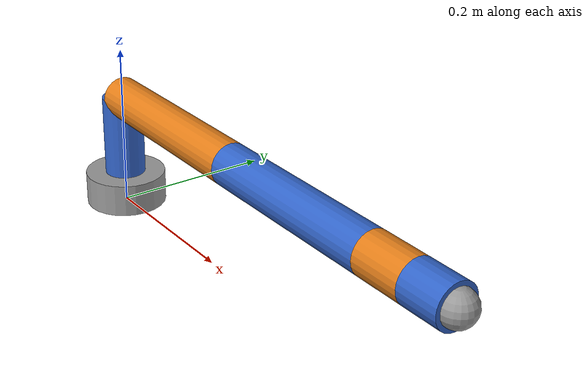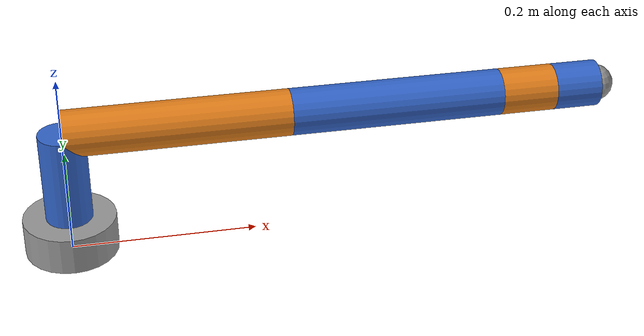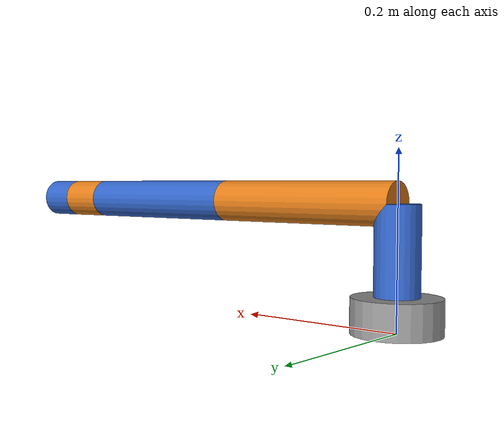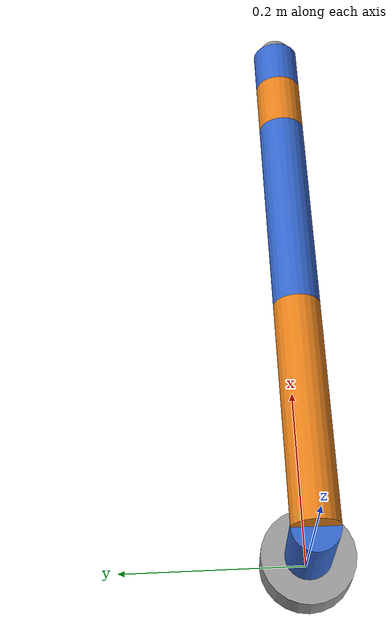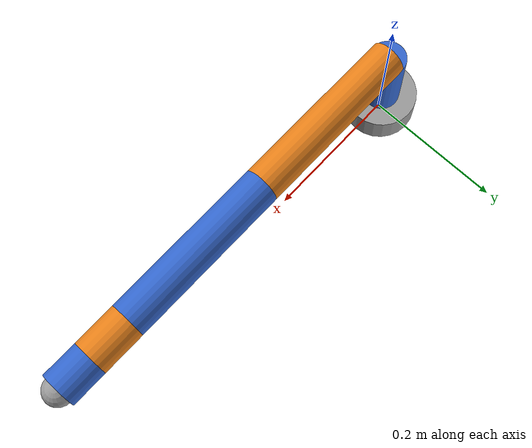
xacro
<?xml version="1.0"?>
<robot xmlns:xacro="http://www.ros.org/wiki/xacro" name="arm5">

  <!-- ====== PARÁMETROS (AQUÍ CAMBIAS DISTANCIAS) ====== -->
  <xacro:property name="L1" value="0.10"/> <!-- base -> joint1 -->
  <xacro:property name="L2" value="0.24"/> <!-- joint1 -> joint2 -->
  <xacro:property name="L3" value="0.23"/> <!-- joint2 -> joint3 -->
  <xacro:property name="L4" value="0.06"/> <!-- joint3 -> joint4 -->
  <xacro:property name="L5" value="0.05"/> <!-- joint4 -> tool -->

  <xacro:property name="radius" value="0.025"/>

  <material name="gray"><color rgba="0.6 0.6 0.6 1.0"/></material>
  <material name="blue"><color rgba="0.2 0.4 0.8 1.0"/></material>
  <material name="orange"><color rgba="0.9 0.5 0.1 1.0"/></material>

  <link name="base_link">
    <visual>
      <geometry><cylinder radius="0.05" length="0.04"/></geometry>
      <origin xyz="0 0 0.02" rpy="0 0 0"/>
      <material name="gray"/>
    </visual>
  </link>

  <link name="link1">
    <visual>
      <geometry><cylinder radius="${radius}" length="${L1}"/></geometry>
      <origin xyz="0 0 ${L1/2}" rpy="0 0 0"/>
      <material name="blue"/>
    </visual>
  </link>

  <link name="link2">
    <visual>
      <geometry><cylinder radius="${radius}" length="${L2}"/></geometry>
      <origin xyz="${L2/2} 0 0" rpy="0 1.5708 0"/>
      <material name="orange"/>
    </visual>
  </link>

  <link name="link3">
    <visual>
      <geometry><cylinder radius="${radius}" length="${L3}"/></geometry>
      <origin xyz="${L3/2} 0 0" rpy="0 1.5708 0"/>
      <material name="blue"/>
    </visual>
  </link>

  <link name="link4">
    <visual>
      <geometry><cylinder radius="${radius}" length="${L4}"/></geometry>
      <origin xyz="${L4/2} 0 0" rpy="0 1.5708 0"/>
      <material name="orange"/>
    </visual>
  </link>

  <link name="link5">
    <visual>
      <geometry><cylinder radius="${radius}" length="${L5}"/></geometry>
      <origin xyz="${L5/2} 0 0" rpy="0 1.5708 0"/>
      <material name="blue"/>
    </visual>
  </link>

  <link name="tool0">
    <visual>
      <geometry><sphere radius="0.02"/></geometry>
      <material name="gray"/>
    </visual>
  </link>

  <!-- Joints (5 DOF) -->
  <joint name="joint1" type="revolute">
    <parent link="base_link"/>
    <child link="link1"/>
    <origin xyz="0 0 0.04" rpy="0 0 0"/>
    <axis xyz="0 0 1"/>
    <limit lower="-3.6652" upper="6.2832" effort="20" velocity="1.5"/>
  </joint>

  <joint name="joint2" type="revolute">
    <parent link="link1"/>
    <child link="link2"/>
    <origin xyz="0 0 ${L1}" rpy="0 0 0"/>
    <axis xyz="0 1 0"/>
    <limit lower="-3.5779" upper="0.4636" effort="20" velocity="1.5"/>
  </joint>

  <joint name="joint3" type="revolute">
    <parent link="link2"/>
    <child link="link3"/>
    <origin xyz="${L2} 0 0" rpy="0 0 0"/>
    <axis xyz="0 1 0"/>
    <limit lower="-2.0944" upper="2.0071" effort="20" velocity="1.5"/>
  </joint>

  <joint name="joint4" type="revolute">
    <parent link="link3"/>
    <child link="link4"/>
    <origin xyz="${L3} 0 0" rpy="0 0 0"/>
    <axis xyz="0 1 0"/>
    <limit lower="-2.0944" upper="2.0071" effort="20" velocity="1.5"/>
  </joint>

  <joint name="joint5" type="revolute">
    <parent link="link4"/>
    <child link="link5"/>
    <origin xyz="${L4} 0 0" rpy="0 0 0"/>
    <axis xyz="1 0 0"/>
    <limit lower="0" upper="1.5708" effort="20" velocity="2.0"/>
  </joint>

  <joint name="tool0_fixed" type="fixed">
    <parent link="link5"/>
    <child link="tool0"/>
    <origin xyz="${L5} 0 0" rpy="0 0 0"/>
  </joint>

</robot>
